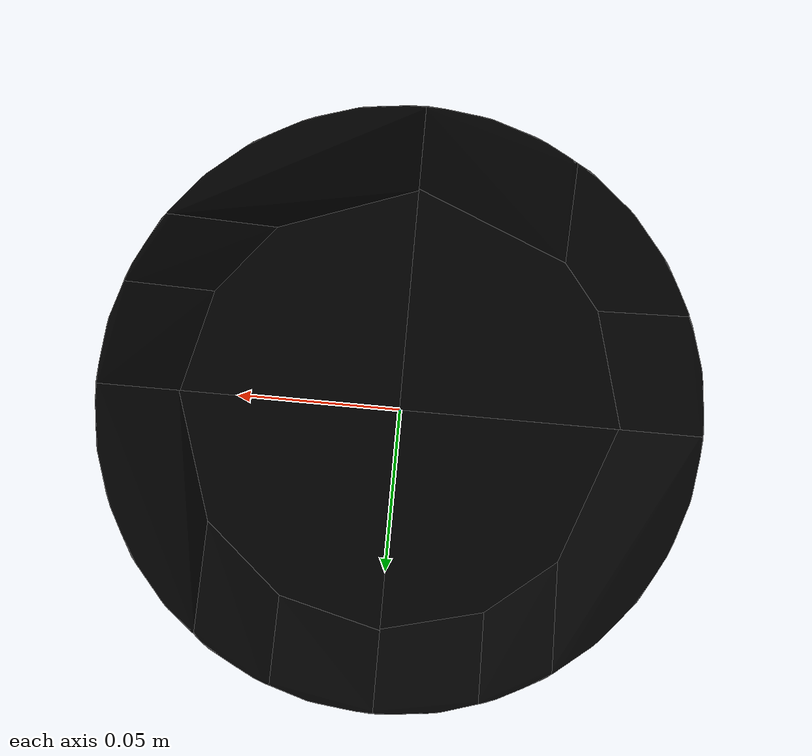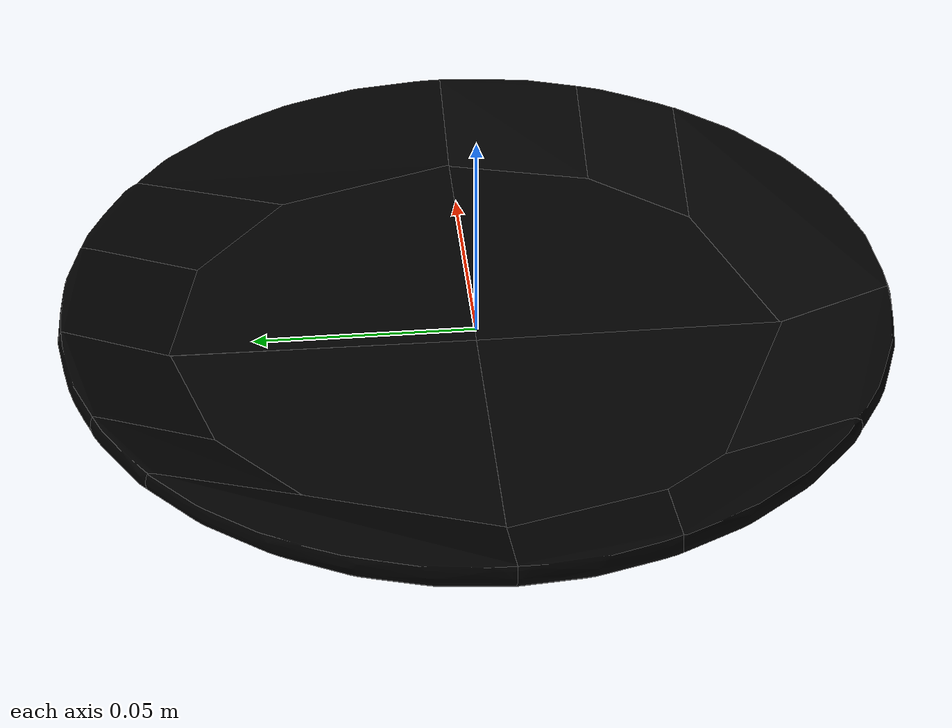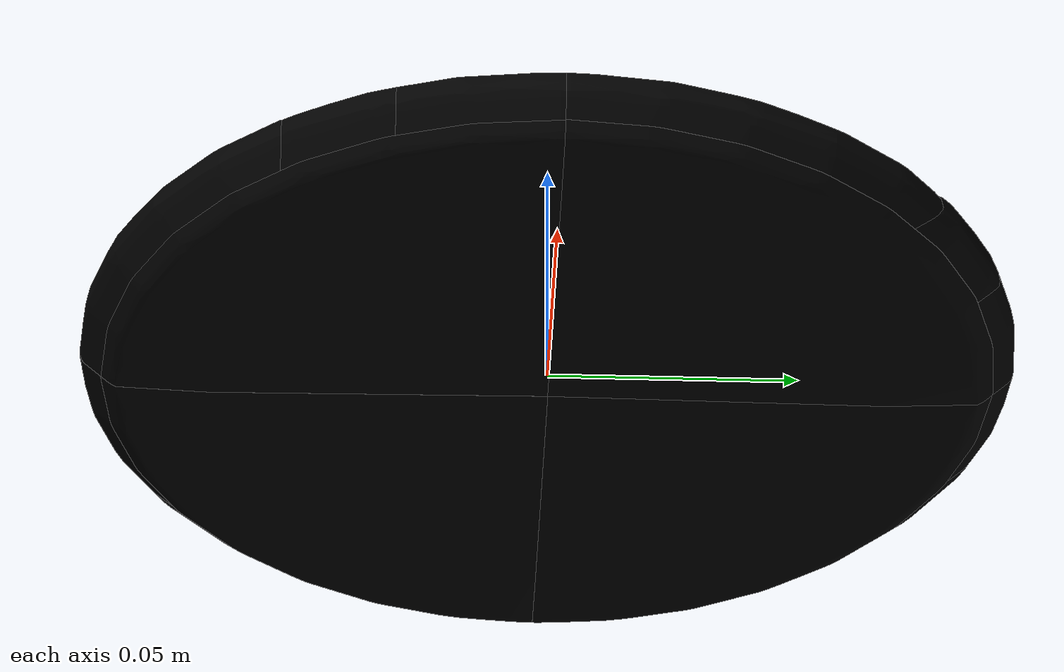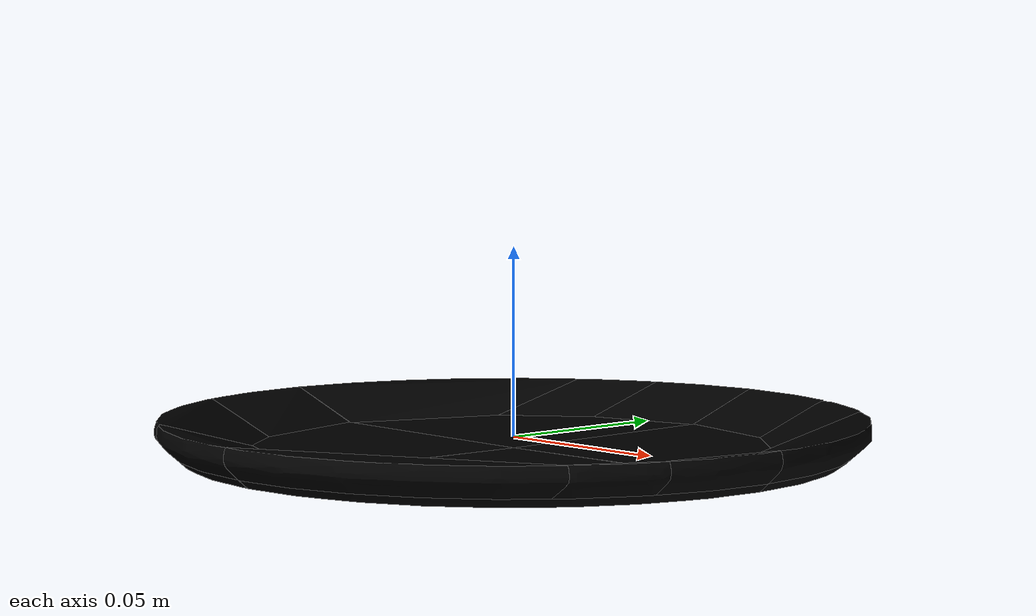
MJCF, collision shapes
<mujoco model="plate_42">
  <asset>
    <mesh file="visual/model_normalized_0.obj" name="model_normalized_0_vis" scale="0.185 0.185 0.185" refquat="1.0 0.0 0.0 0.0" />
    <texture type="2d" name="image0" file="visual/image0.png" />
    <material name="Plate_Material" texture="image0" specular="0.5" shininess="0.359999993" />
    <mesh file="collision/model_collision_0.obj" name="model_collision_0" scale="0.185 0.185 0.185" refquat="1.0 0.0 0.0 0.0" />
    <mesh file="collision/model_collision_1.obj" name="model_collision_1" scale="0.185 0.185 0.185" refquat="1.0 0.0 0.0 0.0" />
    <mesh file="collision/model_collision_2.obj" name="model_collision_2" scale="0.185 0.185 0.185" refquat="1.0 0.0 0.0 0.0" />
    <mesh file="collision/model_collision_3.obj" name="model_collision_3" scale="0.185 0.185 0.185" refquat="1.0 0.0 0.0 0.0" />
    <mesh file="collision/model_collision_4.obj" name="model_collision_4" scale="0.185 0.185 0.185" refquat="1.0 0.0 0.0 0.0" />
    <mesh file="collision/model_collision_5.obj" name="model_collision_5" scale="0.185 0.185 0.185" refquat="1.0 0.0 0.0 0.0" />
    <mesh file="collision/model_collision_6.obj" name="model_collision_6" scale="0.185 0.185 0.185" refquat="1.0 0.0 0.0 0.0" />
    <mesh file="collision/model_collision_7.obj" name="model_collision_7" scale="0.185 0.185 0.185" refquat="1.0 0.0 0.0 0.0" />
    <mesh file="collision/model_collision_8.obj" name="model_collision_8" scale="0.185 0.185 0.185" refquat="1.0 0.0 0.0 0.0" />
    <mesh file="collision/model_collision_9.obj" name="model_collision_9" scale="0.185 0.185 0.185" refquat="1.0 0.0 0.0 0.0" />
    <mesh file="collision/model_collision_10.obj" name="model_collision_10" scale="0.185 0.185 0.185" refquat="1.0 0.0 0.0 0.0" />
    <mesh file="collision/model_collision_11.obj" name="model_collision_11" scale="0.185 0.185 0.185" refquat="1.0 0.0 0.0 0.0" />
    <mesh file="collision/model_collision_12.obj" name="model_collision_12" scale="0.185 0.185 0.185" refquat="1.0 0.0 0.0 0.0" />
    <mesh file="collision/model_collision_13.obj" name="model_collision_13" scale="0.185 0.185 0.185" refquat="1.0 0.0 0.0 0.0" />
    <mesh file="collision/model_collision_14.obj" name="model_collision_14" scale="0.185 0.185 0.185" refquat="1.0 0.0 0.0 0.0" />
    <mesh file="collision/model_collision_15.obj" name="model_collision_15" scale="0.185 0.185 0.185" refquat="1.0 0.0 0.0 0.0" />
  </asset>
  <default>
    <default class="region">
      <geom group="1" conaffinity="0" contype="0" rgba="0 1 0 0" />
    </default>
  </default>
  <worldbody>
    <body>
      <body name="object">
        <geom density="0" type="mesh" mesh="model_normalized_0_vis" conaffinity="0" contype="0" group="2" material="Plate_Material" mass="0.18" />
        <geom class="region" name="reg_bbox" type="box" pos="0.0002734235250000047 -0.00013670760000000198 6.622999999999005e-07" size="0.09155647410000001 0.0910096548 0.00479049175" />
        <geom density="0" friction="1.2 0.1 0.001" type="mesh" group="3" rgba="0 0 0 0" mesh="model_collision_0"  condim="4"/>        <geom density="0" friction="1.2 0.1 0.001" type="mesh" group="3" rgba="0 0 0 0" mesh="model_collision_1"  condim="4"/>        <geom density="0" friction="1.2 0.1 0.001" type="mesh" group="3" rgba="0 0 0 0" mesh="model_collision_2"  condim="4"/>        <geom density="0" friction="1.2 0.1 0.001" type="mesh" group="3" rgba="0 0 0 0" mesh="model_collision_3"  condim="4"/>        <geom density="0" friction="1.2 0.1 0.001" type="mesh" group="3" rgba="0 0 0 0" mesh="model_collision_4"  condim="4"/>        <geom density="0" friction="1.2 0.1 0.001" type="mesh" group="3" rgba="0 0 0 0" mesh="model_collision_5"  condim="4"/>        <geom density="0" friction="1.2 0.1 0.001" type="mesh" group="3" rgba="0 0 0 0" mesh="model_collision_6"  condim="4"/>        <geom density="0" friction="1.2 0.1 0.001" type="mesh" group="3" rgba="0 0 0 0" mesh="model_collision_7"  condim="4"/>        <geom density="0" friction="1.2 0.1 0.001" type="mesh" group="3" rgba="0 0 0 0" mesh="model_collision_8"  condim="4"/>        <geom density="0" friction="1.2 0.1 0.001" type="mesh" group="3" rgba="0 0 0 0" mesh="model_collision_9"  condim="4"/>        <geom density="0" friction="1.2 0.1 0.001" type="mesh" group="3" rgba="0 0 0 0" mesh="model_collision_10"  condim="4"/>        <geom density="0" friction="1.2 0.1 0.001" type="mesh" group="3" rgba="0 0 0 0" mesh="model_collision_11"  condim="4"/>        <geom density="0" friction="1.2 0.1 0.001" type="mesh" group="3" rgba="0 0 0 0" mesh="model_collision_12"  condim="4"/>        <geom density="0" friction="1.2 0.1 0.001" type="mesh" group="3" rgba="0 0 0 0" mesh="model_collision_13"  condim="4"/>        <geom density="0" friction="1.2 0.1 0.001" type="mesh" group="3" rgba="0 0 0 0" mesh="model_collision_14"  condim="4"/>        <geom density="0" friction="1.2 0.1 0.001" type="mesh" group="3" rgba="0 0 0 0" mesh="model_collision_15"  condim="4"/>      </body>
    </body>
  </worldbody>
</mujoco>
